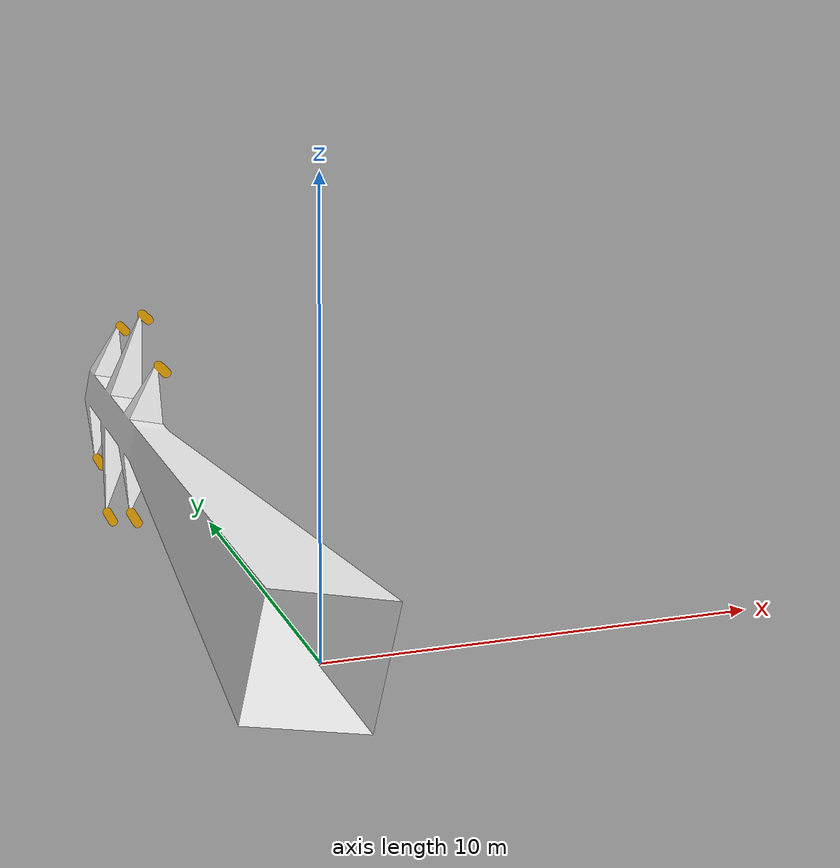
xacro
<?xml version="1.0" ?>
<robot name="elir_robot" xmlns:xacro="http://www.ros.org/wiki/xacro">
  <xacro:property name="PI" value="3.1415926535897931"/>

  <link name="Tower1_Mesh">
    <visual>
      <origin xyz = "0 0 0"  rpy="0 0 0"/>
      <geometry>
        <mesh filename="package://mybot_description/meshes/3d-model.dae"/>
      </geometry>
    </visual>
    <collision>
      <geometry>
        <mesh filename="package://mybot_description/meshes/3d-model.dae"/>
      </geometry>
    </collision>
    <inertial>
      <mass value="4565"/>
      <inertia ixx="9.8478" ixy="-0.0181" ixz="-0.0877" iyy="15.5246" iyz="-0.5623" izz="9.2774"/>
    </inertial>
  </link>

</robot>
